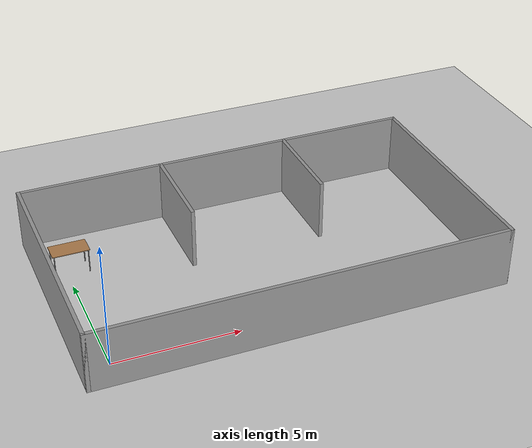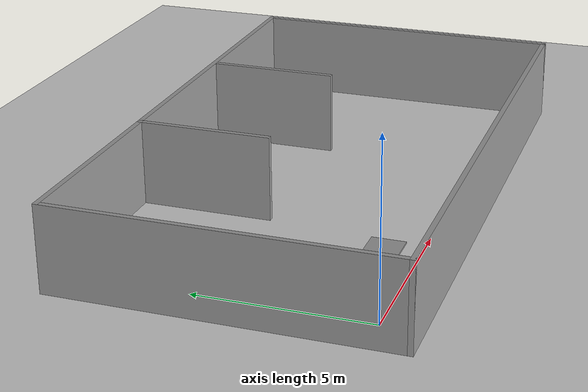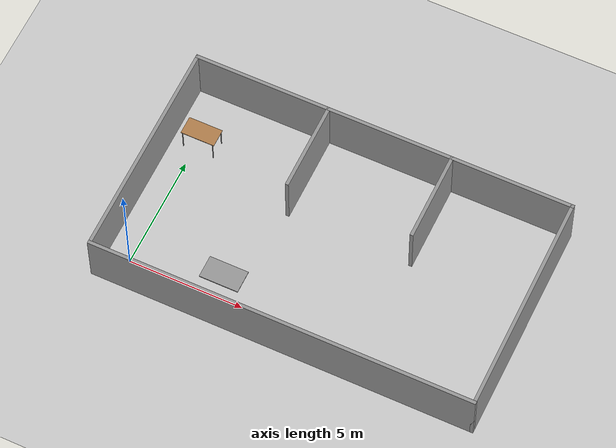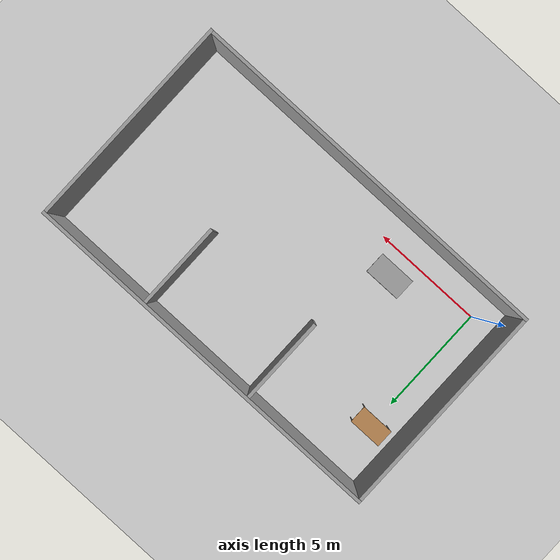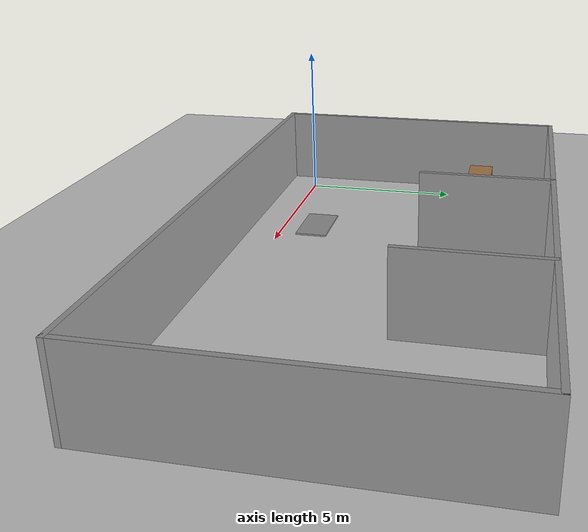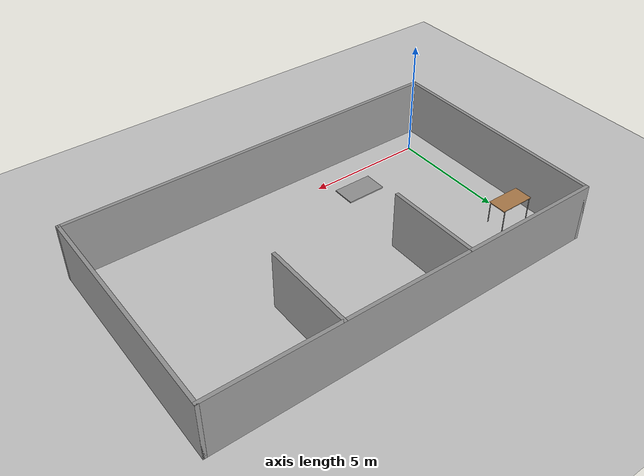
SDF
<sdf version="1.7">
 <world name="default">
  <light name="sun" type="directional">
   <pose>0 0 10 0 -0 0</pose>
   <diffuse>0.8 0.8 0.8 1</diffuse>
   <specular>0.2 0.2 0.2 1</specular>
   <attenuation>
    <range>1000</range>
    <constant>0.9</constant>
    <linear>0.01</linear>
    <quadratic>0.001</quadratic>
   </attenuation>
   <direction>-0.5 0.1 -0.9</direction>
   <spot><inner_angle>0</inner_angle><outer_angle>0</outer_angle><falloff>0</falloff></spot>
  </light>
  <model name="ground_plane">
   <static>1</static>
   <link name="link">
    <collision name="collision">
     <geometry><plane><normal>0 0 1</normal><size>100 100</size></plane></geometry>
     <surface><friction><ode><mu>100</mu><mu2>50</mu2></ode></friction></surface>
    </collision>
    <visual name="visual">
     <cast_shadows>0</cast_shadows>
     <geometry><plane><normal>0 0 1</normal><size>100 100</size></plane></geometry>
     <material>
      <script><uri>file://media/materials/scripts/gazebo.material</uri><name>Gazebo/Grey</name></script>
     </material>
    </visual>
   </link>
  </model>
  <gravity>0 0 -9.8</gravity>
  <magnetic_field>6e-06 2.3e-05 -4.2e-05</magnetic_field>
  <atmosphere type="adiabatic"/>
  <physics type="ode">
   <max_step_size>0.001</max_step_size>
   <real_time_factor>1</real_time_factor>
   <real_time_update_rate>1000</real_time_update_rate>
  </physics>
  <scene><ambient>0.4 0.4 0.4 1</ambient><background>0.7 0.7 0.7 1</background><shadows>1</shadows></scene>
  <spherical_coordinates>
   <surface_model>EARTH_WGS84</surface_model>
   <latitude_deg>0</latitude_deg>
   <longitude_deg>0</longitude_deg>
   <elevation>0</elevation>
   <heading_deg>0</heading_deg>
  </spherical_coordinates>
  <model name="airport_terminal">
   <pose>7.21099 3.71544 0 0 -0 0</pose>
   <link name="Wall_10">
    <collision name="Wall_10_Collision">
     <geometry><box><size>16.75 0.15 2.5</size></box></geometry>
     <pose>0 0 1.25 0 -0 0</pose>
    </collision>
    <visual name="Wall_10_Visual">
     <pose>0 0 1.25 0 -0 0</pose>
     <geometry><box><size>16.75 0.15 2.5</size></box></geometry>
     <material>
      <script><uri>file://media/materials/scripts/gazebo.material</uri><name>Gazebo/Grey</name></script>
      <ambient>1 1 1 1</ambient>
     </material>
     <meta><layer>0</layer></meta>
    </visual>
    <pose>-0 4.8 0 0 -0 0</pose>
   </link>
   <link name="Wall_11">
    <collision name="Wall_11_Collision">
     <geometry><box><size>9.75 0.15 2.5</size></box></geometry>
     <pose>0 0 1.25 0 -0 0</pose>
    </collision>
    <visual name="Wall_11_Visual">
     <pose>0 0 1.25 0 -0 0</pose>
     <geometry><box><size>9.75 0.15 2.5</size></box></geometry>
     <material>
      <script><uri>file://media/materials/scripts/gazebo.material</uri><name>Gazebo/Grey</name></script>
      <ambient>1 1 1 1</ambient>
     </material>
     <meta><layer>0</layer></meta>
    </visual>
    <pose>8.3 -0 0 0 -0 -1.5708</pose>
   </link>
   <link name="Wall_13">
    <collision name="Wall_13_Collision">
     <geometry><box><size>4 0.15 2.5</size></box></geometry>
     <pose>0 0 1.25 0 -0 0</pose>
    </collision>
    <visual name="Wall_13_Visual">
     <pose>0 0 1.25 0 -0 0</pose>
     <geometry><box><size>4 0.15 2.5</size></box></geometry>
     <material>
      <script><uri>file://media/materials/scripts/gazebo.material</uri><name>Gazebo/Grey</name></script>
      <ambient>1 1 1 1</ambient>
     </material>
     <meta><layer>0</layer></meta>
    </visual>
    <pose>-2.39573 2.87428 0 0 -0 -1.5708</pose>
   </link>
   <link name="Wall_15">
    <collision name="Wall_15_Collision">
     <geometry><box><size>4 0.15 2.5</size></box></geometry>
     <pose>0 0 1.25 0 -0 0</pose>
    </collision>
    <visual name="Wall_15_Visual">
     <pose>0 0 1.25 0 -0 0</pose>
     <geometry><box><size>4 0.15 2.5</size></box></geometry>
     <material>
      <script><uri>file://media/materials/scripts/gazebo.material</uri><name>Gazebo/Grey</name></script>
      <ambient>1 1 1 1</ambient>
     </material>
     <meta><layer>0</layer></meta>
    </visual>
    <pose>3.06309 2.87428 0 0 -0 -1.5708</pose>
   </link>
   <link name="Wall_6">
    <collision name="Wall_6_Collision">
     <geometry><box><size>16.75 0.15 2.5</size></box></geometry>
     <pose>0 0 1.25 0 -0 0</pose>
    </collision>
    <visual name="Wall_6_Visual">
     <pose>0 0 1.25 0 -0 0</pose>
     <geometry><box><size>16.75 0.15 2.5</size></box></geometry>
     <material>
      <script><uri>file://media/materials/scripts/gazebo.material</uri><name>Gazebo/Grey</name></script>
      <ambient>1 1 1 1</ambient>
     </material>
     <meta><layer>0</layer></meta>
    </visual>
    <pose>-0 -4.8 0 0 -0 0</pose>
   </link>
   <link name="Wall_8">
    <collision name="Wall_8_Collision">
     <geometry><box><size>9.75 0.15 2.5</size></box></geometry>
     <pose>0 0 1.25 0 -0 0</pose>
    </collision>
    <visual name="Wall_8_Visual">
     <pose>0 0 1.25 0 -0 0</pose>
     <geometry><box><size>9.75 0.15 2.5</size></box></geometry>
     <material>
      <script><uri>file://media/materials/scripts/gazebo.material</uri><name>Gazebo/Grey</name></script>
      <ambient>1 1 1 1</ambient>
     </material>
     <meta><layer>0</layer></meta>
    </visual>
    <pose>-8.3 -0 0 0 -0 1.5708</pose>
   </link>
   <static>1</static>
  </model>
  <model name="table">
   <static>1</static>
   <link name="link">
    <collision name="surface">
     <pose>0 0 1 0 -0 0</pose>
     <geometry><box><size>1.5 0.8 0.03</size></box></geometry>
     <surface><friction><ode><mu>0.6</mu><mu2>0.6</mu2></ode></friction></surface>
    </collision>
    <visual name="visual1">
     <pose>0 0 1 0 -0 0</pose>
     <geometry><box><size>1.5 0.8 0.03</size></box></geometry>
     <material>
      <script><uri>file://media/materials/scripts/gazebo.material</uri><name>Gazebo/Wood</name></script>
     </material>
    </visual>
    <collision name="front_left_leg">
     <pose>0.68 0.38 0.5 0 -0 0</pose>
     <geometry><cylinder><radius>0.02</radius><length>1</length></cylinder></geometry>
    </collision>
    <visual name="front_left_leg">
     <pose>0.68 0.38 0.5 0 -0 0</pose>
     <geometry><cylinder><radius>0.02</radius><length>1</length></cylinder></geometry>
     <material>
      <script><uri>file://media/materials/scripts/gazebo.material</uri><name>Gazebo/Grey</name></script>
     </material>
    </visual>
    <collision name="front_right_leg">
     <pose>0.68 -0.38 0.5 0 -0 0</pose>
     <geometry><cylinder><radius>0.02</radius><length>1</length></cylinder></geometry>
    </collision>
    <visual name="front_right_leg">
     <pose>0.68 -0.38 0.5 0 -0 0</pose>
     <geometry><cylinder><radius>0.02</radius><length>1</length></cylinder></geometry>
     <material>
      <script><uri>file://media/materials/scripts/gazebo.material</uri><name>Gazebo/Grey</name></script>
     </material>
    </visual>
    <collision name="back_right_leg">
     <pose>-0.68 -0.38 0.5 0 -0 0</pose>
     <geometry><cylinder><radius>0.02</radius><length>1</length></cylinder></geometry>
    </collision>
    <visual name="back_right_leg">
     <pose>-0.68 -0.38 0.5 0 -0 0</pose>
     <geometry><cylinder><radius>0.02</radius><length>1</length></cylinder></geometry>
     <material>
      <script><uri>file://media/materials/scripts/gazebo.material</uri><name>Gazebo/Grey</name></script>
     </material>
    </visual>
    <collision name="back_left_leg">
     <pose>-0.68 0.38 0.5 0 -0 0</pose>
     <geometry><cylinder><radius>0.02</radius><length>1</length></cylinder></geometry>
    </collision>
    <visual name="back_left_leg">
     <pose>-0.68 0.38 0.5 0 -0 0</pose>
     <geometry><cylinder><radius>0.02</radius><length>1</length></cylinder></geometry>
     <material>
      <script><uri>file://media/materials/scripts/gazebo.material</uri><name>Gazebo/Grey</name></script>
     </material>
    </visual>
   </link>
   <pose>0.201533 6.16109 0 0 -0 0</pose>
  </model>
  <model name="ground_obstacle">
   <link name="link_0">
    <inertial>
     <mass>0.0860703</mass>
     <inertia>
      <ixx>0.00719052</ixx>
      <ixy>0</ixy>
      <ixz>0</ixz>
      <iyy>0.021233</iyy>
      <iyz>0</iyz>
      <izz>0.0283876</izz>
     </inertia>
    </inertial>
    <pose>1.21178 0.181406 -0.462851 0 -0 0</pose>
    <visual name="visual">
     <geometry><box><size>1.71983 1 0.050085</size></box></geometry>
     <material>
      <lighting>1</lighting>
      <script><uri>file://media/materials/scripts/gazebo.material</uri><name>Gazebo/Grey</name></script>
      <shader type="pixel"/>
     </material>
    </visual>
    <collision name="collision">
     <geometry><box><size>1.71983 1 0.050085</size></box></geometry>
     <surface>
      <friction>
       <ode><mu>1</mu><mu2>1</mu2><fdir1>0 0 0</fdir1><slip1>0</slip1><slip2>0</slip2></ode>
       <torsional>
        <coefficient>1</coefficient>
        <patch_radius>0</patch_radius>
        <surface_radius>0</surface_radius>
        <use_patch_radius>1</use_patch_radius>
        <ode><slip>0</slip></ode>
       </torsional>
      </friction>
      <bounce><restitution_coefficient>0</restitution_coefficient><threshold>1e+06</threshold></bounce>
      <contact>
       <collide_without_contact>0</collide_without_contact>
       <collide_without_contact_bitmask>1</collide_without_contact_bitmask>
       <collide_bitmask>1</collide_bitmask>
       <ode>
        <soft_cfm>0</soft_cfm>
        <soft_erp>0.2</soft_erp>
        <kp>1e+13</kp>
        <kd>1</kd>
        <max_vel>0.01</max_vel>
        <min_depth>0</min_depth>
       </ode>
       <bullet>
        <split_impulse>1</split_impulse>
        <split_impulse_penetration_threshold>-0.01</split_impulse_penetration_threshold>
        <soft_cfm>0</soft_cfm>
        <soft_erp>0.2</soft_erp>
        <kp>1e+13</kp>
        <kd>1</kd>
       </bullet>
      </contact>
     </surface>
    </collision>
   </link>
   <static>0</static>
   <pose>2.4662 0.873458 0.487893 0 -0 0</pose>
  </model>
 </world>
</sdf>
